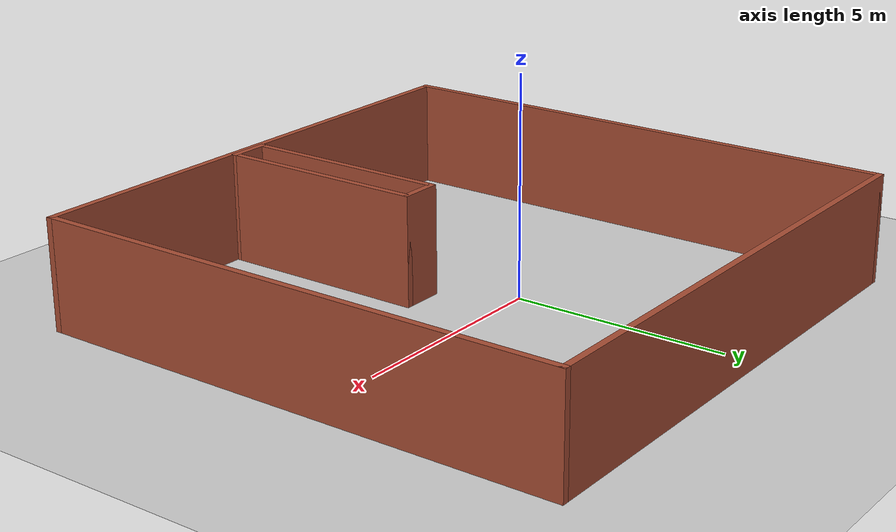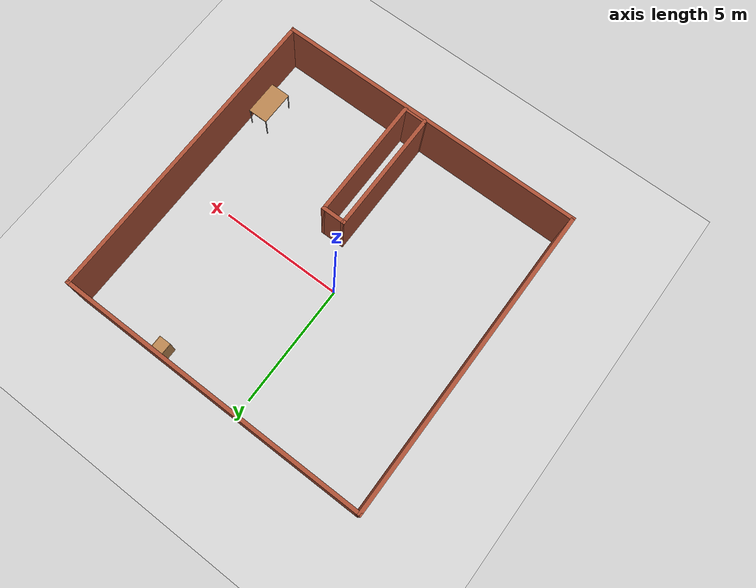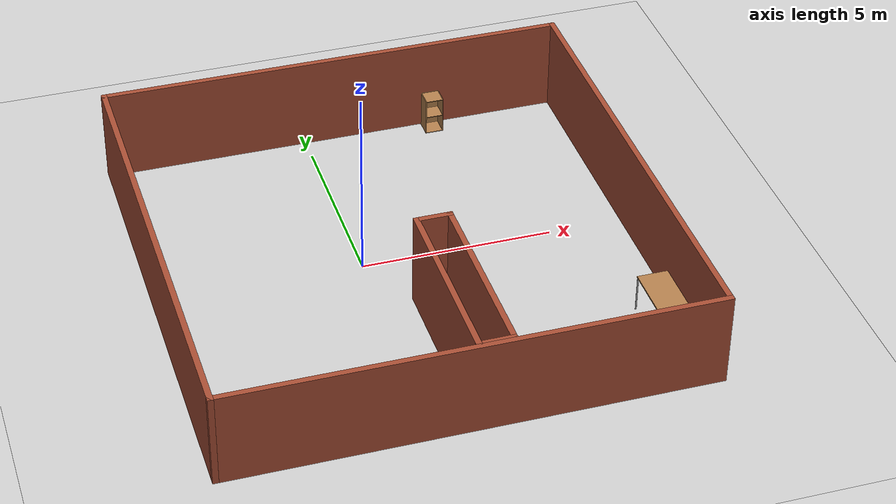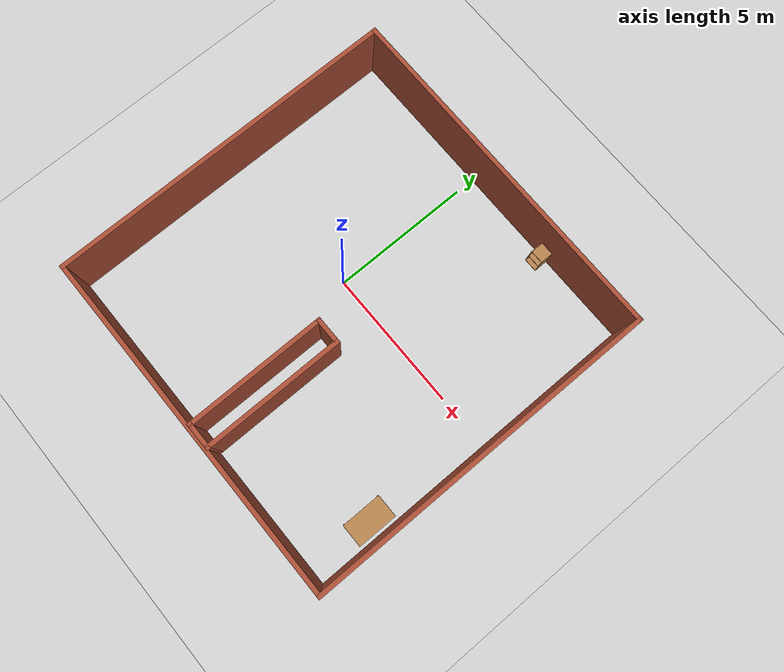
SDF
<sdf version="1.6">
 <world name="default">
  <light name="sun" type="directional">
   <pose>0 0 10 0 -0 0</pose>
   <diffuse>0.8 0.8 0.8 1</diffuse>
   <specular>0.1 0.1 0.1 1</specular>
   <attenuation>
    <range>1000</range>
    <constant>0.9</constant>
    <linear>0.01</linear>
    <quadratic>0.001</quadratic>
   </attenuation>
   <direction>-0.5 0.5 -1</direction>
  </light>
  <model name="ground_plane">
   <static>1</static>
   <link name="link">
    <collision name="collision">
     <geometry><plane><normal>0 0 1</normal><size>100 100</size></plane></geometry>
     <surface><friction><ode><mu>100</mu><mu2>50</mu2></ode></friction></surface>
    </collision>
    <visual name="visual">
     <cast_shadows>0</cast_shadows>
     <geometry><plane><normal>0 0 1</normal><size>100 100</size></plane></geometry>
     <material>
      <script><uri>file://media/materials/scripts/gazebo.material</uri><name>Gazebo/Grey</name></script>
     </material>
    </visual>
   </link>
  </model>
  <gravity>0 0 -9.8</gravity>
  <magnetic_field>6e-06 2.3e-05 -4.2e-05</magnetic_field>
  <atmosphere type="adiabatic"/>
  <physics name="default_physics" default="0" type="ode">
   <max_step_size>0.001</max_step_size>
   <real_time_factor>1</real_time_factor>
   <real_time_update_rate>1000</real_time_update_rate>
  </physics>
  <scene><ambient>0.4 0.4 0.4 1</ambient><background>0.7 0.7 0.7 1</background><shadows>1</shadows></scene>
  <spherical_coordinates>
   <surface_model>EARTH_WGS84</surface_model>
   <latitude_deg>0</latitude_deg>
   <longitude_deg>0</longitude_deg>
   <elevation>0</elevation>
   <heading_deg>0</heading_deg>
  </spherical_coordinates>
  <model name="table_0">
   <link name="link">
    <pose>0 0 0 0 -0 1.57</pose>
    <inertial>
     <inertia><ixx>1</ixx><ixy>0</ixy><ixz>0</ixz><iyy>1</iyy><iyz>0</iyz><izz>1</izz></inertia>
     <mass>1</mass>
    </inertial>
    <visual name="visual1">
     <pose>0 0 1 0 -0 0</pose>
     <geometry><box><size>1.4 0.8 0.04</size></box></geometry>
     <material>
      <script><uri>file://media/materials/scripts/gazebo.material</uri><name>Gazebo/Wood</name></script>
      <ambient>1 1 1 1</ambient>
      <diffuse>1 1 1 1</diffuse>
      <specular>0.2 0.2 0.2 1</specular>
      <emissive>0 0 0 1</emissive>
      <shader type="vertex"><normal_map>__default__</normal_map></shader>
     </material>
    </visual>
    <visual name="front_left_leg">
     <pose>0.68 0.38 0.5 0 -0 0</pose>
     <geometry><cylinder><radius>0.02</radius><length>1</length></cylinder></geometry>
     <material>
      <script><uri>file://media/materials/scripts/gazebo.material</uri><name>Gazebo/Grey</name></script>
      <ambient>0.3 0.3 0.3 1</ambient>
      <diffuse>0.7 0.7 0.7 1</diffuse>
      <specular>0.01 0.01 0.01 1</specular>
      <emissive>0 0 0 1</emissive>
      <shader type="vertex"><normal_map>__default__</normal_map></shader>
     </material>
    </visual>
    <visual name="front_right_leg">
     <pose>0.68 -0.38 0.5 0 -0 0</pose>
     <geometry><cylinder><radius>0.02</radius><length>1</length></cylinder></geometry>
     <material>
      <script><uri>file://media/materials/scripts/gazebo.material</uri><name>Gazebo/Grey</name></script>
      <ambient>0.3 0.3 0.3 1</ambient>
      <diffuse>0.7 0.7 0.7 1</diffuse>
      <specular>0.01 0.01 0.01 1</specular>
      <emissive>0 0 0 1</emissive>
      <shader type="vertex"><normal_map>__default__</normal_map></shader>
     </material>
    </visual>
    <visual name="back_right_leg">
     <pose>-0.68 -0.38 0.5 0 -0 0</pose>
     <geometry><cylinder><radius>0.02</radius><length>1</length></cylinder></geometry>
     <material>
      <script><uri>file://media/materials/scripts/gazebo.material</uri><name>Gazebo/Grey</name></script>
      <ambient>0.3 0.3 0.3 1</ambient>
      <diffuse>0.7 0.7 0.7 1</diffuse>
      <specular>0.01 0.01 0.01 1</specular>
      <emissive>0 0 0 1</emissive>
      <shader type="vertex"><normal_map>__default__</normal_map></shader>
     </material>
    </visual>
    <visual name="back_left_leg">
     <pose>-0.68 0.38 0.5 0 -0 0</pose>
     <geometry><cylinder><radius>0.02</radius><length>1</length></cylinder></geometry>
     <material>
      <script><uri>file://media/materials/scripts/gazebo.material</uri><name>Gazebo/Grey</name></script>
      <ambient>0.3 0.3 0.3 1</ambient>
      <diffuse>0.7 0.7 0.7 1</diffuse>
      <specular>0.01 0.01 0.01 1</specular>
      <emissive>0 0 0 1</emissive>
      <shader type="vertex"><normal_map>__default__</normal_map></shader>
     </material>
    </visual>
    <collision name="surface">
     <pose>0 0 1 0 -0 0</pose>
     <geometry><box><size>1.5 0.8 0.03</size></box></geometry>
     <surface>
      <friction>
       <ode><mu>0.6</mu><mu2>0.6</mu2><fdir1>0 0 0</fdir1><slip1>0</slip1><slip2>0</slip2></ode>
       <torsional>
        <coefficient>1</coefficient>
        <patch_radius>0</patch_radius>
        <surface_radius>0</surface_radius>
        <use_patch_radius>1</use_patch_radius>
        <ode><slip>0</slip></ode>
       </torsional>
      </friction>
      <bounce><restitution_coefficient>0</restitution_coefficient><threshold>1e+06</threshold></bounce>
      <contact>
       <collide_without_contact>0</collide_without_contact>
       <collide_without_contact_bitmask>1</collide_without_contact_bitmask>
       <collide_bitmask>1</collide_bitmask>
       <ode>
        <soft_cfm>0</soft_cfm>
        <soft_erp>0.2</soft_erp>
        <kp>1e+13</kp>
        <kd>1</kd>
        <max_vel>0.01</max_vel>
        <min_depth>0</min_depth>
       </ode>
       <bullet>
        <split_impulse>1</split_impulse>
        <split_impulse_penetration_threshold>-0.01</split_impulse_penetration_threshold>
        <soft_cfm>0</soft_cfm>
        <soft_erp>0.2</soft_erp>
        <kp>1e+13</kp>
        <kd>1</kd>
       </bullet>
      </contact>
     </surface>
    </collision>
    <collision name="front_left_leg">
     <pose>0.68 0.38 0.5 0 -0 0</pose>
     <geometry><cylinder><radius>0.02</radius><length>1</length></cylinder></geometry>
     <surface>
      <friction>
       <ode><mu>1</mu><mu2>1</mu2><fdir1>0 0 0</fdir1><slip1>0</slip1><slip2>0</slip2></ode>
       <torsional>
        <coefficient>1</coefficient>
        <patch_radius>0</patch_radius>
        <surface_radius>0</surface_radius>
        <use_patch_radius>1</use_patch_radius>
        <ode><slip>0</slip></ode>
       </torsional>
      </friction>
      <bounce><restitution_coefficient>0</restitution_coefficient><threshold>1e+06</threshold></bounce>
      <contact>
       <collide_without_contact>0</collide_without_contact>
       <collide_without_contact_bitmask>1</collide_without_contact_bitmask>
       <collide_bitmask>1</collide_bitmask>
       <ode>
        <soft_cfm>0</soft_cfm>
        <soft_erp>0.2</soft_erp>
        <kp>1e+13</kp>
        <kd>1</kd>
        <max_vel>0.01</max_vel>
        <min_depth>0</min_depth>
       </ode>
       <bullet>
        <split_impulse>1</split_impulse>
        <split_impulse_penetration_threshold>-0.01</split_impulse_penetration_threshold>
        <soft_cfm>0</soft_cfm>
        <soft_erp>0.2</soft_erp>
        <kp>1e+13</kp>
        <kd>1</kd>
       </bullet>
      </contact>
     </surface>
    </collision>
    <collision name="back_right_leg">
     <pose>-0.68 -0.38 0.5 0 -0 0</pose>
     <geometry><cylinder><radius>0.02</radius><length>1</length></cylinder></geometry>
     <surface>
      <friction>
       <ode><mu>1</mu><mu2>1</mu2><fdir1>0 0 0</fdir1><slip1>0</slip1><slip2>0</slip2></ode>
       <torsional>
        <coefficient>1</coefficient>
        <patch_radius>0</patch_radius>
        <surface_radius>0</surface_radius>
        <use_patch_radius>1</use_patch_radius>
        <ode><slip>0</slip></ode>
       </torsional>
      </friction>
      <bounce><restitution_coefficient>0</restitution_coefficient><threshold>1e+06</threshold></bounce>
      <contact>
       <collide_without_contact>0</collide_without_contact>
       <collide_without_contact_bitmask>1</collide_without_contact_bitmask>
       <collide_bitmask>1</collide_bitmask>
       <ode>
        <soft_cfm>0</soft_cfm>
        <soft_erp>0.2</soft_erp>
        <kp>1e+13</kp>
        <kd>1</kd>
        <max_vel>0.01</max_vel>
        <min_depth>0</min_depth>
       </ode>
       <bullet>
        <split_impulse>1</split_impulse>
        <split_impulse_penetration_threshold>-0.01</split_impulse_penetration_threshold>
        <soft_cfm>0</soft_cfm>
        <soft_erp>0.2</soft_erp>
        <kp>1e+13</kp>
        <kd>1</kd>
       </bullet>
      </contact>
     </surface>
    </collision>
    <collision name="front_right_leg">
     <pose>0.68 -0.38 0.5 0 -0 0</pose>
     <geometry><cylinder><radius>0.02</radius><length>1</length></cylinder></geometry>
     <surface>
      <friction>
       <ode><mu>1</mu><mu2>1</mu2><fdir1>0 0 0</fdir1><slip1>0</slip1><slip2>0</slip2></ode>
       <torsional>
        <coefficient>1</coefficient>
        <patch_radius>0</patch_radius>
        <surface_radius>0</surface_radius>
        <use_patch_radius>1</use_patch_radius>
        <ode><slip>0</slip></ode>
       </torsional>
      </friction>
      <bounce><restitution_coefficient>0</restitution_coefficient><threshold>1e+06</threshold></bounce>
      <contact>
       <collide_without_contact>0</collide_without_contact>
       <collide_without_contact_bitmask>1</collide_without_contact_bitmask>
       <collide_bitmask>1</collide_bitmask>
       <ode>
        <soft_cfm>0</soft_cfm>
        <soft_erp>0.2</soft_erp>
        <kp>1e+13</kp>
        <kd>1</kd>
        <max_vel>0.01</max_vel>
        <min_depth>0</min_depth>
       </ode>
       <bullet>
        <split_impulse>1</split_impulse>
        <split_impulse_penetration_threshold>-0.01</split_impulse_penetration_threshold>
        <soft_cfm>0</soft_cfm>
        <soft_erp>0.2</soft_erp>
        <kp>1e+13</kp>
        <kd>1</kd>
       </bullet>
      </contact>
     </surface>
    </collision>
    <collision name="back_left_leg">
     <pose>-0.68 0.38 0.5 0 -0 0</pose>
     <geometry><cylinder><radius>0.02</radius><length>1</length></cylinder></geometry>
     <surface>
      <friction>
       <ode><mu>1</mu><mu2>1</mu2><fdir1>0 0 0</fdir1><slip1>0</slip1><slip2>0</slip2></ode>
       <torsional>
        <coefficient>1</coefficient>
        <patch_radius>0</patch_radius>
        <surface_radius>0</surface_radius>
        <use_patch_radius>1</use_patch_radius>
        <ode><slip>0</slip></ode>
       </torsional>
      </friction>
      <bounce><restitution_coefficient>0</restitution_coefficient><threshold>1e+06</threshold></bounce>
      <contact>
       <collide_without_contact>0</collide_without_contact>
       <collide_without_contact_bitmask>1</collide_without_contact_bitmask>
       <collide_bitmask>1</collide_bitmask>
       <ode>
        <soft_cfm>0</soft_cfm>
        <soft_erp>0.2</soft_erp>
        <kp>1e+13</kp>
        <kd>1</kd>
        <max_vel>0.01</max_vel>
        <min_depth>0</min_depth>
       </ode>
       <bullet>
        <split_impulse>1</split_impulse>
        <split_impulse_penetration_threshold>-0.01</split_impulse_penetration_threshold>
        <soft_cfm>0</soft_cfm>
        <soft_erp>0.2</soft_erp>
        <kp>1e+13</kp>
        <kd>1</kd>
       </bullet>
      </contact>
     </surface>
    </collision>
   </link>
   <static>0</static>
   <pose>6.37044 -4.24594 -6e-06 4e-06 2e-06 -0</pose>
  </model>
  <model name="cabinet_1">
   <link name="cabinet_bottom_plate">
    <pose>0 0 0 0 -0 1.57</pose>
    <inertial>
     <pose>0 0 -1 0 -0 1.57</pose>
     <inertia><ixx>2.05</ixx><ixy>0</ixy><ixz>0</ixz><iyy>2.05</iyy><iyz>0</iyz><izz>2.05</izz></inertia>
     <mass>25</mass>
    </inertial>
    <visual name="cabinet_bottom_plate_geom_cabinet_back_plate_visual">
     <pose>0.235 0 0.51 0 -0 0</pose>
     <geometry><box><size>0.02 0.45 1.02</size></box></geometry>
     <material>
      <script><uri>file://media/materials/scripts/gazebo.material</uri><name>Gazebo/Wood</name></script>
      <ambient>1 1 1 1</ambient>
      <diffuse>1 1 1 1</diffuse>
      <specular>0.2 0.2 0.2 1</specular>
      <emissive>0 0 0 1</emissive>
      <shader type="vertex"><normal_map>__default__</normal_map></shader>
     </material>
    </visual>
    <visual name="cabinet_bottom_plate_geom_visual">
     <pose>0 0 0.01 0 -0 0</pose>
     <geometry><box><size>0.45 0.45 0.02</size></box></geometry>
     <material>
      <script><uri>file://media/materials/scripts/gazebo.material</uri><name>Gazebo/Wood</name></script>
      <ambient>1 1 1 1</ambient>
      <diffuse>1 1 1 1</diffuse>
      <specular>0.2 0.2 0.2 1</specular>
      <emissive>0 0 0 1</emissive>
      <shader type="vertex"><normal_map>__default__</normal_map></shader>
     </material>
    </visual>
    <visual name="cabinet_bottom_plate_geom_cabinet_left_plate_visual">
     <pose>0 0.235 0.51 0 -0 0</pose>
     <geometry><box><size>0.45 0.02 1.02</size></box></geometry>
     <material>
      <script><uri>file://media/materials/scripts/gazebo.material</uri><name>Gazebo/Wood</name></script>
      <ambient>1 1 1 1</ambient>
      <diffuse>1 1 1 1</diffuse>
      <specular>0.2 0.2 0.2 1</specular>
      <emissive>0 0 0 1</emissive>
      <shader type="vertex"><normal_map>__default__</normal_map></shader>
     </material>
    </visual>
    <visual name="cabinet_bottom_plate_geom_cabinet_middle_plate_visual">
     <pose>0 0 0.51 0 -0 0</pose>
     <geometry><box><size>0.45 0.45 0.02</size></box></geometry>
     <material>
      <script><uri>file://media/materials/scripts/gazebo.material</uri><name>Gazebo/Wood</name></script>
      <ambient>1 1 1 1</ambient>
      <diffuse>1 1 1 1</diffuse>
      <specular>0.2 0.2 0.2 1</specular>
      <emissive>0 0 0 1</emissive>
      <shader type="vertex"><normal_map>__default__</normal_map></shader>
     </material>
    </visual>
    <visual name="cabinet_bottom_plate_geom_cabinet_right_plate_visual">
     <pose>0 -0.235 0.51 0 -0 0</pose>
     <geometry><box><size>0.45 0.02 1.02</size></box></geometry>
     <material>
      <script><uri>file://media/materials/scripts/gazebo.material</uri><name>Gazebo/Wood</name></script>
      <ambient>1 1 1 1</ambient>
      <diffuse>1 1 1 1</diffuse>
      <specular>0.2 0.2 0.2 1</specular>
      <emissive>0 0 0 1</emissive>
      <shader type="vertex"><normal_map>__default__</normal_map></shader>
     </material>
    </visual>
    <visual name="cabinet_bottom_plate_geom_cabinet_top_plate_visual">
     <pose>0 0 1.01 0 -0 0</pose>
     <geometry><box><size>0.45 0.45 0.02</size></box></geometry>
     <material>
      <script><uri>file://media/materials/scripts/gazebo.material</uri><name>Gazebo/Wood</name></script>
      <ambient>1 1 1 1</ambient>
      <diffuse>1 1 1 1</diffuse>
      <specular>0.2 0.2 0.2 1</specular>
      <emissive>0 0 0 1</emissive>
      <shader type="vertex"><normal_map>__default__</normal_map></shader>
     </material>
    </visual>
    <collision name="cabinet_bottom_plate_geom">
     <pose>0 0 0.01 0 -0 0</pose>
     <geometry><box><size>0.45 0.45 0.02</size></box></geometry>
     <surface>
      <friction>
       <ode><mu>1</mu><mu2>1</mu2><fdir1>0 0 0</fdir1><slip1>0</slip1><slip2>0</slip2></ode>
       <torsional>
        <coefficient>1</coefficient>
        <patch_radius>0</patch_radius>
        <surface_radius>0</surface_radius>
        <use_patch_radius>1</use_patch_radius>
        <ode><slip>0</slip></ode>
       </torsional>
      </friction>
      <bounce><restitution_coefficient>0</restitution_coefficient><threshold>1e+06</threshold></bounce>
      <contact>
       <collide_without_contact>0</collide_without_contact>
       <collide_without_contact_bitmask>1</collide_without_contact_bitmask>
       <collide_bitmask>1</collide_bitmask>
       <ode>
        <soft_cfm>0</soft_cfm>
        <soft_erp>0.2</soft_erp>
        <kp>1e+13</kp>
        <kd>1</kd>
        <max_vel>0.01</max_vel>
        <min_depth>0</min_depth>
       </ode>
       <bullet>
        <split_impulse>1</split_impulse>
        <split_impulse_penetration_threshold>-0.01</split_impulse_penetration_threshold>
        <soft_cfm>0</soft_cfm>
        <soft_erp>0.2</soft_erp>
        <kp>1e+13</kp>
        <kd>1</kd>
       </bullet>
      </contact>
     </surface>
    </collision>
    <collision name="cabinet_bottom_plate_geom_cabinet_back_plate">
     <pose>0.235 0 0.51 0 -0 0</pose>
     <geometry><box><size>0.02 0.45 1.02</size></box></geometry>
     <surface>
      <friction>
       <ode><mu>1</mu><mu2>1</mu2><fdir1>0 0 0</fdir1><slip1>0</slip1><slip2>0</slip2></ode>
       <torsional>
        <coefficient>1</coefficient>
        <patch_radius>0</patch_radius>
        <surface_radius>0</surface_radius>
        <use_patch_radius>1</use_patch_radius>
        <ode><slip>0</slip></ode>
       </torsional>
      </friction>
      <bounce><restitution_coefficient>0</restitution_coefficient><threshold>1e+06</threshold></bounce>
      <contact>
       <collide_without_contact>0</collide_without_contact>
       <collide_without_contact_bitmask>1</collide_without_contact_bitmask>
       <collide_bitmask>1</collide_bitmask>
       <ode>
        <soft_cfm>0</soft_cfm>
        <soft_erp>0.2</soft_erp>
        <kp>1e+13</kp>
        <kd>1</kd>
        <max_vel>0.01</max_vel>
        <min_depth>0</min_depth>
       </ode>
       <bullet>
        <split_impulse>1</split_impulse>
        <split_impulse_penetration_threshold>-0.01</split_impulse_penetration_threshold>
        <soft_cfm>0</soft_cfm>
        <soft_erp>0.2</soft_erp>
        <kp>1e+13</kp>
        <kd>1</kd>
       </bullet>
      </contact>
     </surface>
    </collision>
    <collision name="cabinet_bottom_plate_geom_cabinet_left_plate">
     <pose>0 0.235 0.51 0 -0 0</pose>
     <geometry><box><size>0.45 0.02 1.02</size></box></geometry>
     <surface>
      <friction>
       <ode><mu>1</mu><mu2>1</mu2><fdir1>0 0 0</fdir1><slip1>0</slip1><slip2>0</slip2></ode>
       <torsional>
        <coefficient>1</coefficient>
        <patch_radius>0</patch_radius>
        <surface_radius>0</surface_radius>
        <use_patch_radius>1</use_patch_radius>
        <ode><slip>0</slip></ode>
       </torsional>
      </friction>
      <bounce><restitution_coefficient>0</restitution_coefficient><threshold>1e+06</threshold></bounce>
      <contact>
       <collide_without_contact>0</collide_without_contact>
       <collide_without_contact_bitmask>1</collide_without_contact_bitmask>
       <collide_bitmask>1</collide_bitmask>
       <ode>
        <soft_cfm>0</soft_cfm>
        <soft_erp>0.2</soft_erp>
        <kp>1e+13</kp>
        <kd>1</kd>
        <max_vel>0.01</max_vel>
        <min_depth>0</min_depth>
       </ode>
       <bullet>
        <split_impulse>1</split_impulse>
        <split_impulse_penetration_threshold>-0.01</split_impulse_penetration_threshold>
        <soft_cfm>0</soft_cfm>
        <soft_erp>0.2</soft_erp>
        <kp>1e+13</kp>
        <kd>1</kd>
       </bullet>
      </contact>
     </surface>
    </collision>
    <collision name="cabinet_bottom_plate_geom_cabinet_middle_plate">
     <pose>0 0 0.51 0 -0 0</pose>
     <geometry><box><size>0.45 0.45 0.02</size></box></geometry>
     <surface>
      <friction>
       <ode><mu>1</mu><mu2>1</mu2><fdir1>0 0 0</fdir1><slip1>0</slip1><slip2>0</slip2></ode>
       <torsional>
        <coefficient>1</coefficient>
        <patch_radius>0</patch_radius>
        <surface_radius>0</surface_radius>
        <use_patch_radius>1</use_patch_radius>
        <ode><slip>0</slip></ode>
       </torsional>
      </friction>
      <bounce><restitution_coefficient>0</restitution_coefficient><threshold>1e+06</threshold></bounce>
      <contact>
       <collide_without_contact>0</collide_without_contact>
       <collide_without_contact_bitmask>1</collide_without_contact_bitmask>
       <collide_bitmask>1</collide_bitmask>
       <ode>
        <soft_cfm>0</soft_cfm>
        <soft_erp>0.2</soft_erp>
        <kp>1e+13</kp>
        <kd>1</kd>
        <max_vel>0.01</max_vel>
        <min_depth>0</min_depth>
       </ode>
       <bullet>
        <split_impulse>1</split_impulse>
        <split_impulse_penetration_threshold>-0.01</split_impulse_penetration_threshold>
        <soft_cfm>0</soft_cfm>
        <soft_erp>0.2</soft_erp>
        <kp>1e+13</kp>
        <kd>1</kd>
       </bullet>
      </contact>
     </surface>
    </collision>
    <collision name="cabinet_bottom_plate_geom_cabinet_right_plate">
     <pose>0 -0.235 0.51 0 -0 0</pose>
     <geometry><box><size>0.45 0.02 1.02</size></box></geometry>
     <surface>
      <friction>
       <ode><mu>1</mu><mu2>1</mu2><fdir1>0 0 0</fdir1><slip1>0</slip1><slip2>0</slip2></ode>
       <torsional>
        <coefficient>1</coefficient>
        <patch_radius>0</patch_radius>
        <surface_radius>0</surface_radius>
        <use_patch_radius>1</use_patch_radius>
        <ode><slip>0</slip></ode>
       </torsional>
      </friction>
      <bounce><restitution_coefficient>0</restitution_coefficient><threshold>1e+06</threshold></bounce>
      <contact>
       <collide_without_contact>0</collide_without_contact>
       <collide_without_contact_bitmask>1</collide_without_contact_bitmask>
       <collide_bitmask>1</collide_bitmask>
       <ode>
        <soft_cfm>0</soft_cfm>
        <soft_erp>0.2</soft_erp>
        <kp>1e+13</kp>
        <kd>1</kd>
        <max_vel>0.01</max_vel>
        <min_depth>0</min_depth>
       </ode>
       <bullet>
        <split_impulse>1</split_impulse>
        <split_impulse_penetration_threshold>-0.01</split_impulse_penetration_threshold>
        <soft_cfm>0</soft_cfm>
        <soft_erp>0.2</soft_erp>
        <kp>1e+13</kp>
        <kd>1</kd>
       </bullet>
      </contact>
     </surface>
    </collision>
    <collision name="cabinet_bottom_plate_geom_cabinet_top_plate">
     <pose>0 0 1.01 0 -0 0</pose>
     <geometry><box><size>0.45 0.45 0.02</size></box></geometry>
     <surface>
      <friction>
       <ode><mu>1</mu><mu2>1</mu2><fdir1>0 0 0</fdir1><slip1>0</slip1><slip2>0</slip2></ode>
       <torsional>
        <coefficient>1</coefficient>
        <patch_radius>0</patch_radius>
        <surface_radius>0</surface_radius>
        <use_patch_radius>1</use_patch_radius>
        <ode><slip>0</slip></ode>
       </torsional>
      </friction>
      <bounce><restitution_coefficient>0</restitution_coefficient><threshold>1e+06</threshold></bounce>
      <contact>
       <collide_without_contact>0</collide_without_contact>
       <collide_without_contact_bitmask>1</collide_without_contact_bitmask>
       <collide_bitmask>1</collide_bitmask>
       <ode>
        <soft_cfm>0</soft_cfm>
        <soft_erp>0.2</soft_erp>
        <kp>1e+13</kp>
        <kd>1</kd>
        <max_vel>0.01</max_vel>
        <min_depth>0</min_depth>
       </ode>
       <bullet>
        <split_impulse>1</split_impulse>
        <split_impulse_penetration_threshold>-0.01</split_impulse_penetration_threshold>
        <soft_cfm>0</soft_cfm>
        <soft_erp>0.2</soft_erp>
        <kp>1e+13</kp>
        <kd>1</kd>
       </bullet>
      </contact>
     </surface>
    </collision>
   </link>
   <static>1</static>
   <pose>3.49514 5.39333 0 0 -0 0</pose>
  </model>
  <model name="Floor_Plan_Proj_0_1_0">
   <link name="Wall_23">
    <pose>-6.175 0 0 0 -0 1.5708</pose>
    <inertial>
     <mass>1</mass>
     <inertia><ixx>1</ixx><ixy>0</ixy><ixz>0</ixz><iyy>1</iyy><iyz>0</iyz><izz>1</izz></inertia>
    </inertial>
    <visual name="Wall_23_Visual">
     <pose>0 0 1.25 0 -0 0</pose>
     <geometry><box><size>12.5 0.15 2.5</size></box></geometry>
     <material>
      <script><uri>file://media/materials/scripts/gazebo.material</uri><name>Gazebo/Bricks</name></script>
      <ambient>0 0 0 1</ambient>
      <diffuse>0 0 0 1</diffuse>
      <specular>0 0 0 1</specular>
      <emissive>0 0 0 1</emissive>
      <shader type="vertex"><normal_map>__default__</normal_map></shader>
     </material>
    </visual>
    <collision name="Wall_23_Collision">
     <pose>0 0 1.25 0 -0 0</pose>
     <geometry><box><size>12.5 0.15 2.5</size></box></geometry>
     <surface>
      <friction>
       <ode><mu>1</mu><mu2>1</mu2><fdir1>0 0 0</fdir1><slip1>0</slip1><slip2>0</slip2></ode>
       <torsional>
        <coefficient>1</coefficient>
        <patch_radius>0</patch_radius>
        <surface_radius>0</surface_radius>
        <use_patch_radius>1</use_patch_radius>
        <ode><slip>0</slip></ode>
       </torsional>
      </friction>
      <bounce><restitution_coefficient>0</restitution_coefficient><threshold>1e+06</threshold></bounce>
      <contact>
       <collide_without_contact>0</collide_without_contact>
       <collide_without_contact_bitmask>1</collide_without_contact_bitmask>
       <collide_bitmask>1</collide_bitmask>
       <ode>
        <soft_cfm>0</soft_cfm>
        <soft_erp>0.2</soft_erp>
        <kp>1e+13</kp>
        <kd>1</kd>
        <max_vel>0.01</max_vel>
        <min_depth>0</min_depth>
       </ode>
       <bullet>
        <split_impulse>1</split_impulse>
        <split_impulse_penetration_threshold>-0.01</split_impulse_penetration_threshold>
        <soft_cfm>0</soft_cfm>
        <soft_erp>0.2</soft_erp>
        <kp>1e+13</kp>
        <kd>1</kd>
       </bullet>
      </contact>
     </surface>
    </collision>
   </link>
   <link name="Wall_24">
    <pose>0 6.175 0 0 -0 0</pose>
    <inertial>
     <mass>1</mass>
     <inertia><ixx>1</ixx><ixy>0</ixy><ixz>0</ixz><iyy>1</iyy><iyz>0</iyz><izz>1</izz></inertia>
    </inertial>
    <visual name="Wall_24_Visual">
     <pose>0 0 1.25 0 -0 0</pose>
     <geometry><box><size>12.5 0.15 2.5</size></box></geometry>
     <material>
      <script><uri>file://media/materials/scripts/gazebo.material</uri><name>Gazebo/Bricks</name></script>
      <ambient>0 0 0 1</ambient>
      <diffuse>0 0 0 1</diffuse>
      <specular>0 0 0 1</specular>
      <emissive>0 0 0 1</emissive>
      <shader type="vertex"><normal_map>__default__</normal_map></shader>
     </material>
    </visual>
    <collision name="Wall_24_Collision">
     <pose>0 0 1.25 0 -0 0</pose>
     <geometry><box><size>12.5 0.15 2.5</size></box></geometry>
     <surface>
      <friction>
       <ode><mu>1</mu><mu2>1</mu2><fdir1>0 0 0</fdir1><slip1>0</slip1><slip2>0</slip2></ode>
       <torsional>
        <coefficient>1</coefficient>
        <patch_radius>0</patch_radius>
        <surface_radius>0</surface_radius>
        <use_patch_radius>1</use_patch_radius>
        <ode><slip>0</slip></ode>
       </torsional>
      </friction>
      <bounce><restitution_coefficient>0</restitution_coefficient><threshold>1e+06</threshold></bounce>
      <contact>
       <collide_without_contact>0</collide_without_contact>
       <collide_without_contact_bitmask>1</collide_without_contact_bitmask>
       <collide_bitmask>1</collide_bitmask>
       <ode>
        <soft_cfm>0</soft_cfm>
        <soft_erp>0.2</soft_erp>
        <kp>1e+13</kp>
        <kd>1</kd>
        <max_vel>0.01</max_vel>
        <min_depth>0</min_depth>
       </ode>
       <bullet>
        <split_impulse>1</split_impulse>
        <split_impulse_penetration_threshold>-0.01</split_impulse_penetration_threshold>
        <soft_cfm>0</soft_cfm>
        <soft_erp>0.2</soft_erp>
        <kp>1e+13</kp>
        <kd>1</kd>
       </bullet>
      </contact>
     </surface>
    </collision>
   </link>
   <link name="Wall_25">
    <pose>6.175 0 0 0 0 -1.5708</pose>
    <inertial>
     <mass>1</mass>
     <inertia><ixx>1</ixx><ixy>0</ixy><ixz>0</ixz><iyy>1</iyy><iyz>0</iyz><izz>1</izz></inertia>
    </inertial>
    <visual name="Wall_25_Visual">
     <pose>0 0 1.25 0 -0 0</pose>
     <geometry><box><size>12.5 0.15 2.5</size></box></geometry>
     <material>
      <script><uri>file://media/materials/scripts/gazebo.material</uri><name>Gazebo/Bricks</name></script>
      <ambient>0 0 0 1</ambient>
      <diffuse>0 0 0 1</diffuse>
      <specular>0 0 0 1</specular>
      <emissive>0 0 0 1</emissive>
      <shader type="vertex"><normal_map>__default__</normal_map></shader>
     </material>
    </visual>
    <collision name="Wall_25_Collision">
     <pose>0 0 1.25 0 -0 0</pose>
     <geometry><box><size>12.5 0.15 2.5</size></box></geometry>
     <surface>
      <friction>
       <ode><mu>1</mu><mu2>1</mu2><fdir1>0 0 0</fdir1><slip1>0</slip1><slip2>0</slip2></ode>
       <torsional>
        <coefficient>1</coefficient>
        <patch_radius>0</patch_radius>
        <surface_radius>0</surface_radius>
        <use_patch_radius>1</use_patch_radius>
        <ode><slip>0</slip></ode>
       </torsional>
      </friction>
      <bounce><restitution_coefficient>0</restitution_coefficient><threshold>1e+06</threshold></bounce>
      <contact>
       <collide_without_contact>0</collide_without_contact>
       <collide_without_contact_bitmask>1</collide_without_contact_bitmask>
       <collide_bitmask>1</collide_bitmask>
       <ode>
        <soft_cfm>0</soft_cfm>
        <soft_erp>0.2</soft_erp>
        <kp>1e+13</kp>
        <kd>1</kd>
        <max_vel>0.01</max_vel>
        <min_depth>0</min_depth>
       </ode>
       <bullet>
        <split_impulse>1</split_impulse>
        <split_impulse_penetration_threshold>-0.01</split_impulse_penetration_threshold>
        <soft_cfm>0</soft_cfm>
        <soft_erp>0.2</soft_erp>
        <kp>1e+13</kp>
        <kd>1</kd>
       </bullet>
      </contact>
     </surface>
    </collision>
   </link>
   <link name="Wall_26">
    <pose>0 -6.175 0 0 -0 3.14159</pose>
    <inertial>
     <mass>1</mass>
     <inertia><ixx>1</ixx><ixy>0</ixy><ixz>0</ixz><iyy>1</iyy><iyz>0</iyz><izz>1</izz></inertia>
    </inertial>
    <visual name="Wall_26_Visual">
     <pose>0 0 1.25 0 -0 0</pose>
     <geometry><box><size>12.5 0.15 2.5</size></box></geometry>
     <material>
      <script><uri>file://media/materials/scripts/gazebo.material</uri><name>Gazebo/Bricks</name></script>
      <ambient>0 0 0 1</ambient>
      <diffuse>0 0 0 1</diffuse>
      <specular>0 0 0 1</specular>
      <emissive>0 0 0 1</emissive>
      <shader type="vertex"><normal_map>__default__</normal_map></shader>
     </material>
    </visual>
    <collision name="Wall_26_Collision">
     <pose>0 0 1.25 0 -0 0</pose>
     <geometry><box><size>12.5 0.15 2.5</size></box></geometry>
     <surface>
      <friction>
       <ode><mu>1</mu><mu2>1</mu2><fdir1>0 0 0</fdir1><slip1>0</slip1><slip2>0</slip2></ode>
       <torsional>
        <coefficient>1</coefficient>
        <patch_radius>0</patch_radius>
        <surface_radius>0</surface_radius>
        <use_patch_radius>1</use_patch_radius>
        <ode><slip>0</slip></ode>
       </torsional>
      </friction>
      <bounce><restitution_coefficient>0</restitution_coefficient><threshold>1e+06</threshold></bounce>
      <contact>
       <collide_without_contact>0</collide_without_contact>
       <collide_without_contact_bitmask>1</collide_without_contact_bitmask>
       <collide_bitmask>1</collide_bitmask>
       <ode>
        <soft_cfm>0</soft_cfm>
        <soft_erp>0.2</soft_erp>
        <kp>1e+13</kp>
        <kd>1</kd>
        <max_vel>0.01</max_vel>
        <min_depth>0</min_depth>
       </ode>
       <bullet>
        <split_impulse>1</split_impulse>
        <split_impulse_penetration_threshold>-0.01</split_impulse_penetration_threshold>
        <soft_cfm>0</soft_cfm>
        <soft_erp>0.2</soft_erp>
        <kp>1e+13</kp>
        <kd>1</kd>
       </bullet>
      </contact>
     </surface>
    </collision>
   </link>
   <link name="Wall_33">
    <pose>0.07 -3.658 0 0 -0 1.5708</pose>
    <inertial>
     <mass>1</mass>
     <inertia><ixx>1</ixx><ixy>0</ixy><ixz>0</ixz><iyy>1</iyy><iyz>0</iyz><izz>1</izz></inertia>
    </inertial>
    <visual name="Wall_33_Visual">
     <pose>0 0 1.25 0 -0 0</pose>
     <geometry><box><size>5 0.15 2.5</size></box></geometry>
     <material>
      <script><uri>file://media/materials/scripts/gazebo.material</uri><name>Gazebo/Bricks</name></script>
      <ambient>0 0 0 1</ambient>
      <diffuse>0 0 0 1</diffuse>
      <specular>0 0 0 1</specular>
      <emissive>0 0 0 1</emissive>
      <shader type="vertex"><normal_map>__default__</normal_map></shader>
     </material>
    </visual>
    <collision name="Wall_33_Collision">
     <pose>0 0 1.25 0 -0 0</pose>
     <geometry><box><size>5 0.15 2.5</size></box></geometry>
     <surface>
      <friction>
       <ode><mu>1</mu><mu2>1</mu2><fdir1>0 0 0</fdir1><slip1>0</slip1><slip2>0</slip2></ode>
       <torsional>
        <coefficient>1</coefficient>
        <patch_radius>0</patch_radius>
        <surface_radius>0</surface_radius>
        <use_patch_radius>1</use_patch_radius>
        <ode><slip>0</slip></ode>
       </torsional>
      </friction>
      <bounce><restitution_coefficient>0</restitution_coefficient><threshold>1e+06</threshold></bounce>
      <contact>
       <collide_without_contact>0</collide_without_contact>
       <collide_without_contact_bitmask>1</collide_without_contact_bitmask>
       <collide_bitmask>1</collide_bitmask>
       <ode>
        <soft_cfm>0</soft_cfm>
        <soft_erp>0.2</soft_erp>
        <kp>1e+13</kp>
        <kd>1</kd>
        <max_vel>0.01</max_vel>
        <min_depth>0</min_depth>
       </ode>
       <bullet>
        <split_impulse>1</split_impulse>
        <split_impulse_penetration_threshold>-0.01</split_impulse_penetration_threshold>
        <soft_cfm>0</soft_cfm>
        <soft_erp>0.2</soft_erp>
        <kp>1e+13</kp>
        <kd>1</kd>
       </bullet>
      </contact>
     </surface>
    </collision>
   </link>
   <link name="Wall_34">
    <pose>0.495 -1.233 0 0 -0 0</pose>
    <inertial>
     <mass>1</mass>
     <inertia><ixx>1</ixx><ixy>0</ixy><ixz>0</ixz><iyy>1</iyy><iyz>0</iyz><izz>1</izz></inertia>
    </inertial>
    <visual name="Wall_34_Visual">
     <pose>0 0 1.25 0 -0 0</pose>
     <geometry><box><size>1 0.15 2.5</size></box></geometry>
     <material>
      <script><uri>file://media/materials/scripts/gazebo.material</uri><name>Gazebo/Bricks</name></script>
      <ambient>0 0 0 1</ambient>
      <diffuse>0 0 0 1</diffuse>
      <specular>0 0 0 1</specular>
      <emissive>0 0 0 1</emissive>
      <shader type="vertex"><normal_map>__default__</normal_map></shader>
     </material>
    </visual>
    <collision name="Wall_34_Collision">
     <pose>0 0 1.25 0 -0 0</pose>
     <geometry><box><size>1 0.15 2.5</size></box></geometry>
     <surface>
      <friction>
       <ode><mu>1</mu><mu2>1</mu2><fdir1>0 0 0</fdir1><slip1>0</slip1><slip2>0</slip2></ode>
       <torsional>
        <coefficient>1</coefficient>
        <patch_radius>0</patch_radius>
        <surface_radius>0</surface_radius>
        <use_patch_radius>1</use_patch_radius>
        <ode><slip>0</slip></ode>
       </torsional>
      </friction>
      <bounce><restitution_coefficient>0</restitution_coefficient><threshold>1e+06</threshold></bounce>
      <contact>
       <collide_without_contact>0</collide_without_contact>
       <collide_without_contact_bitmask>1</collide_without_contact_bitmask>
       <collide_bitmask>1</collide_bitmask>
       <ode>
        <soft_cfm>0</soft_cfm>
        <soft_erp>0.2</soft_erp>
        <kp>1e+13</kp>
        <kd>1</kd>
        <max_vel>0.01</max_vel>
        <min_depth>0</min_depth>
       </ode>
       <bullet>
        <split_impulse>1</split_impulse>
        <split_impulse_penetration_threshold>-0.01</split_impulse_penetration_threshold>
        <soft_cfm>0</soft_cfm>
        <soft_erp>0.2</soft_erp>
        <kp>1e+13</kp>
        <kd>1</kd>
       </bullet>
      </contact>
     </surface>
    </collision>
   </link>
   <link name="Wall_35">
    <pose>0.92 -3.658 0 0 0 -1.5708</pose>
    <inertial>
     <mass>1</mass>
     <inertia><ixx>1</ixx><ixy>0</ixy><ixz>0</ixz><iyy>1</iyy><iyz>0</iyz><izz>1</izz></inertia>
    </inertial>
    <visual name="Wall_35_Visual">
     <pose>0 0 1.25 0 -0 0</pose>
     <geometry><box><size>5 0.15 2.5</size></box></geometry>
     <material>
      <script><uri>file://media/materials/scripts/gazebo.material</uri><name>Gazebo/Bricks</name></script>
      <ambient>0 0 0 1</ambient>
      <diffuse>0 0 0 1</diffuse>
      <specular>0 0 0 1</specular>
      <emissive>0 0 0 1</emissive>
      <shader type="vertex"><normal_map>__default__</normal_map></shader>
     </material>
    </visual>
    <collision name="Wall_35_Collision">
     <pose>0 0 1.25 0 -0 0</pose>
     <geometry><box><size>5 0.15 2.5</size></box></geometry>
     <surface>
      <friction>
       <ode><mu>1</mu><mu2>1</mu2><fdir1>0 0 0</fdir1><slip1>0</slip1><slip2>0</slip2></ode>
       <torsional>
        <coefficient>1</coefficient>
        <patch_radius>0</patch_radius>
        <surface_radius>0</surface_radius>
        <use_patch_radius>1</use_patch_radius>
        <ode><slip>0</slip></ode>
       </torsional>
      </friction>
      <bounce><restitution_coefficient>0</restitution_coefficient><threshold>1e+06</threshold></bounce>
      <contact>
       <collide_without_contact>0</collide_without_contact>
       <collide_without_contact_bitmask>1</collide_without_contact_bitmask>
       <collide_bitmask>1</collide_bitmask>
       <ode>
        <soft_cfm>0</soft_cfm>
        <soft_erp>0.2</soft_erp>
        <kp>1e+13</kp>
        <kd>1</kd>
        <max_vel>0.01</max_vel>
        <min_depth>0</min_depth>
       </ode>
       <bullet>
        <split_impulse>1</split_impulse>
        <split_impulse_penetration_threshold>-0.01</split_impulse_penetration_threshold>
        <soft_cfm>0</soft_cfm>
        <soft_erp>0.2</soft_erp>
        <kp>1e+13</kp>
        <kd>1</kd>
       </bullet>
      </contact>
     </surface>
    </collision>
   </link>
   <link name="Wall_36">
    <pose>0.495 -6.083 0 0 -0 3.14159</pose>
    <visual name="Wall_36_Visual">
     <pose>0 0 1.25 0 -0 0</pose>
     <geometry><box><size>1 0.15 2.5</size></box></geometry>
     <material>
      <script><uri>file://media/materials/scripts/gazebo.material</uri><name>Gazebo/Bricks</name></script>
      <ambient>1 1 1 1</ambient>
      <diffuse>1 1 1 1</diffuse>
      <specular>0.2 0.2 0.2 1</specular>
      <emissive>0 0 0 1</emissive>
     </material>
    </visual>
    <collision name="Wall_36_Collision">
     <pose>0 0 1.25 0 -0 0</pose>
     <geometry><box><size>1 0.15 2.5</size></box></geometry>
     <surface>
      <friction>
       <ode><mu>1</mu><mu2>1</mu2><fdir1>0 0 0</fdir1><slip1>0</slip1><slip2>0</slip2></ode>
       <torsional>
        <coefficient>1</coefficient>
        <patch_radius>0</patch_radius>
        <surface_radius>0</surface_radius>
        <use_patch_radius>1</use_patch_radius>
        <ode><slip>0</slip></ode>
       </torsional>
      </friction>
      <bounce><restitution_coefficient>0</restitution_coefficient><threshold>1e+06</threshold></bounce>
      <contact>
       <collide_without_contact>0</collide_without_contact>
       <collide_without_contact_bitmask>1</collide_without_contact_bitmask>
       <collide_bitmask>1</collide_bitmask>
       <ode>
        <soft_cfm>0</soft_cfm>
        <soft_erp>0.2</soft_erp>
        <kp>1e+13</kp>
        <kd>1</kd>
        <max_vel>0.01</max_vel>
        <min_depth>0</min_depth>
       </ode>
       <bullet>
        <split_impulse>1</split_impulse>
        <split_impulse_penetration_threshold>-0.01</split_impulse_penetration_threshold>
        <soft_cfm>0</soft_cfm>
        <soft_erp>0.2</soft_erp>
        <kp>1e+13</kp>
        <kd>1</kd>
       </bullet>
      </contact>
     </surface>
    </collision>
   </link>
   <static>1</static>
   <pose>0.8279 -0.445644 0 0 -0 0</pose>
  </model>
 </world>
</sdf>
